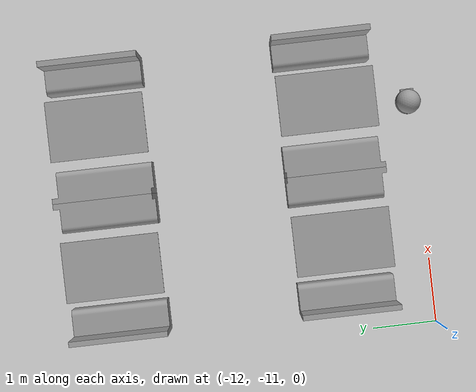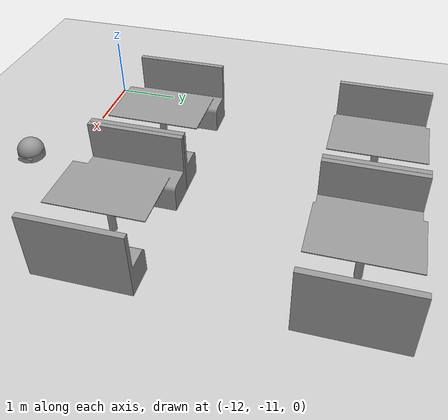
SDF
<sdf version="1.6">
 <world name="default">
  <model name="ground_plane">
   <static>1</static>
   <link name="link">
    <collision name="collision">
     <geometry><plane><normal>0 0 1</normal><size>100 100</size></plane></geometry>
     <surface><friction><ode><mu>100</mu><mu2>50</mu2></ode></friction></surface>
    </collision>
    <visual name="visual">
     <cast_shadows>0</cast_shadows>
     <geometry><plane><normal>0 0 1</normal><size>100 100</size></plane></geometry>
     <material>
      <script><uri>file://media/materials/scripts/gazebo.material</uri><name>Gazebo/Grey</name></script>
     </material>
    </visual>
   </link>
  </model>
  <model name="table_3">
   <link name="link_0">
    <inertial>
     <mass>1</mass>
     <inertia>
      <ixx>0.166667</ixx>
      <ixy>0</ixy>
      <ixz>0</ixz>
      <iyy>0.166667</iyy>
      <iyz>0</iyz>
      <izz>0.166667</izz>
     </inertia>
    </inertial>
    <visual name="visual">
     <pose>-1.9 -1.17 0 0 -0 0</pose>
     <geometry><mesh><uri>model://table/mesh/table.dae</uri><scale>0.6 0.6 0.6</scale></mesh></geometry>
     <material>
      <lighting>1</lighting>
      <script><uri>file://media/materials/scripts/gazebo.material</uri><name>Gazebo/Grey</name></script>
      <shader type="pixel"><normal_map>__default__</normal_map></shader>
      <ambient>0.3 0.3 0.3 1</ambient>
      <diffuse>0.7 0.7 0.7 1</diffuse>
      <specular>0.01 0.01 0.01 1</specular>
      <emissive>0 0 0 1</emissive>
     </material>
    </visual>
    <collision name="collision">
     <geometry><box><size>2.2 1.5 1.1</size></box></geometry>
     <surface>
      <friction>
       <ode><mu>1</mu><mu2>1</mu2><fdir1>0 0 0</fdir1><slip1>0</slip1><slip2>0</slip2></ode>
       <torsional>
        <coefficient>1</coefficient>
        <patch_radius>0</patch_radius>
        <surface_radius>0</surface_radius>
        <use_patch_radius>1</use_patch_radius>
        <ode><slip>0</slip></ode>
       </torsional>
      </friction>
      <bounce><restitution_coefficient>0</restitution_coefficient><threshold>1e+06</threshold></bounce>
      <contact>
       <collide_without_contact>0</collide_without_contact>
       <collide_without_contact_bitmask>1</collide_without_contact_bitmask>
       <collide_bitmask>1</collide_bitmask>
       <ode>
        <soft_cfm>0</soft_cfm>
        <soft_erp>0.2</soft_erp>
        <kp>1e+13</kp>
        <kd>1</kd>
        <max_vel>0.01</max_vel>
        <min_depth>0</min_depth>
       </ode>
       <bullet>
        <split_impulse>1</split_impulse>
        <split_impulse_penetration_threshold>-0.01</split_impulse_penetration_threshold>
        <soft_cfm>0</soft_cfm>
        <soft_erp>0.2</soft_erp>
        <kp>1e+13</kp>
        <kd>1</kd>
       </bullet>
      </contact>
     </surface>
    </collision>
   </link>
   <static>1</static>
   <pose>-10.5559 -6.11096 0 0 -0 0</pose>
  </model>
  <model name="table_4">
   <link name="link_0">
    <inertial>
     <mass>1</mass>
     <inertia>
      <ixx>0.166667</ixx>
      <ixy>0</ixy>
      <ixz>0</ixz>
      <iyy>0.166667</iyy>
      <iyz>0</iyz>
      <izz>0.166667</izz>
     </inertia>
    </inertial>
    <visual name="visual">
     <pose>-1.9 -1.17 0 0 -0 0</pose>
     <geometry><mesh><uri>model://table/mesh/table.dae</uri><scale>0.6 0.6 0.6</scale></mesh></geometry>
     <material>
      <lighting>1</lighting>
      <script><uri>file://media/materials/scripts/gazebo.material</uri><name>Gazebo/Grey</name></script>
      <shader type="pixel"><normal_map>__default__</normal_map></shader>
      <ambient>0.3 0.3 0.3 1</ambient>
      <diffuse>0.7 0.7 0.7 1</diffuse>
      <specular>0.01 0.01 0.01 1</specular>
      <emissive>0 0 0 1</emissive>
     </material>
    </visual>
    <collision name="collision">
     <geometry><box><size>2.2 1.5 1.1</size></box></geometry>
     <surface>
      <friction>
       <ode><mu>1</mu><mu2>1</mu2><fdir1>0 0 0</fdir1><slip1>0</slip1><slip2>0</slip2></ode>
       <torsional>
        <coefficient>1</coefficient>
        <patch_radius>0</patch_radius>
        <surface_radius>0</surface_radius>
        <use_patch_radius>1</use_patch_radius>
        <ode><slip>0</slip></ode>
       </torsional>
      </friction>
      <bounce><restitution_coefficient>0</restitution_coefficient><threshold>1e+06</threshold></bounce>
      <contact>
       <collide_without_contact>0</collide_without_contact>
       <collide_without_contact_bitmask>1</collide_without_contact_bitmask>
       <collide_bitmask>1</collide_bitmask>
       <ode>
        <soft_cfm>0</soft_cfm>
        <soft_erp>0.2</soft_erp>
        <kp>1e+13</kp>
        <kd>1</kd>
        <max_vel>0.01</max_vel>
        <min_depth>0</min_depth>
       </ode>
       <bullet>
        <split_impulse>1</split_impulse>
        <split_impulse_penetration_threshold>-0.01</split_impulse_penetration_threshold>
        <soft_cfm>0</soft_cfm>
        <soft_erp>0.2</soft_erp>
        <kp>1e+13</kp>
        <kd>1</kd>
       </bullet>
      </contact>
     </surface>
    </collision>
   </link>
   <static>1</static>
   <pose>-10.5562 -9.62109 0 0 -0 0</pose>
  </model>
  <model name="table_7">
   <link name="link_0">
    <inertial>
     <mass>1</mass>
     <inertia>
      <ixx>0.166667</ixx>
      <ixy>0</ixy>
      <ixz>0</ixz>
      <iyy>0.166667</iyy>
      <iyz>0</iyz>
      <izz>0.166667</izz>
     </inertia>
    </inertial>
    <visual name="visual">
     <pose>-1.9 -1.17 0 0 -0 0</pose>
     <geometry><mesh><uri>model://table/mesh/table.dae</uri><scale>0.6 0.6 0.6</scale></mesh></geometry>
     <material>
      <lighting>1</lighting>
      <script><uri>file://media/materials/scripts/gazebo.material</uri><name>Gazebo/Grey</name></script>
      <shader type="pixel"><normal_map>__default__</normal_map></shader>
      <ambient>0.3 0.3 0.3 1</ambient>
      <diffuse>0.7 0.7 0.7 1</diffuse>
      <specular>0.01 0.01 0.01 1</specular>
      <emissive>0 0 0 1</emissive>
     </material>
    </visual>
    <collision name="collision">
     <geometry><box><size>2.2 1.5 1.1</size></box></geometry>
     <surface>
      <friction>
       <ode><mu>1</mu><mu2>1</mu2><fdir1>0 0 0</fdir1><slip1>0</slip1><slip2>0</slip2></ode>
       <torsional>
        <coefficient>1</coefficient>
        <patch_radius>0</patch_radius>
        <surface_radius>0</surface_radius>
        <use_patch_radius>1</use_patch_radius>
        <ode><slip>0</slip></ode>
       </torsional>
      </friction>
      <bounce><restitution_coefficient>0</restitution_coefficient><threshold>1e+06</threshold></bounce>
      <contact>
       <collide_without_contact>0</collide_without_contact>
       <collide_without_contact_bitmask>1</collide_without_contact_bitmask>
       <collide_bitmask>1</collide_bitmask>
       <ode>
        <soft_cfm>0</soft_cfm>
        <soft_erp>0.2</soft_erp>
        <kp>1e+13</kp>
        <kd>1</kd>
        <max_vel>0.01</max_vel>
        <min_depth>0</min_depth>
       </ode>
       <bullet>
        <split_impulse>1</split_impulse>
        <split_impulse_penetration_threshold>-0.01</split_impulse_penetration_threshold>
        <soft_cfm>0</soft_cfm>
        <soft_erp>0.2</soft_erp>
        <kp>1e+13</kp>
        <kd>1</kd>
       </bullet>
      </contact>
     </surface>
    </collision>
   </link>
   <static>1</static>
   <pose>-8.41264 -6.11092 0 0 -0 0</pose>
  </model>
  <model name="table_8">
   <link name="link_0">
    <inertial>
     <mass>1</mass>
     <inertia>
      <ixx>0.166667</ixx>
      <ixy>0</ixy>
      <ixz>0</ixz>
      <iyy>0.166667</iyy>
      <iyz>0</iyz>
      <izz>0.166667</izz>
     </inertia>
    </inertial>
    <visual name="visual">
     <pose>-1.9 -1.17 0 0 -0 0</pose>
     <geometry><mesh><uri>model://table/mesh/table.dae</uri><scale>0.6 0.6 0.6</scale></mesh></geometry>
     <material>
      <lighting>1</lighting>
      <script><uri>file://media/materials/scripts/gazebo.material</uri><name>Gazebo/Grey</name></script>
      <shader type="pixel"><normal_map>__default__</normal_map></shader>
      <ambient>0.3 0.3 0.3 1</ambient>
      <diffuse>0.7 0.7 0.7 1</diffuse>
      <specular>0.01 0.01 0.01 1</specular>
      <emissive>0 0 0 1</emissive>
     </material>
    </visual>
    <collision name="collision">
     <geometry><box><size>2.2 1.5 1.1</size></box></geometry>
     <surface>
      <friction>
       <ode><mu>1</mu><mu2>1</mu2><fdir1>0 0 0</fdir1><slip1>0</slip1><slip2>0</slip2></ode>
       <torsional>
        <coefficient>1</coefficient>
        <patch_radius>0</patch_radius>
        <surface_radius>0</surface_radius>
        <use_patch_radius>1</use_patch_radius>
        <ode><slip>0</slip></ode>
       </torsional>
      </friction>
      <bounce><restitution_coefficient>0</restitution_coefficient><threshold>1e+06</threshold></bounce>
      <contact>
       <collide_without_contact>0</collide_without_contact>
       <collide_without_contact_bitmask>1</collide_without_contact_bitmask>
       <collide_bitmask>1</collide_bitmask>
       <ode>
        <soft_cfm>0</soft_cfm>
        <soft_erp>0.2</soft_erp>
        <kp>1e+13</kp>
        <kd>1</kd>
        <max_vel>0.01</max_vel>
        <min_depth>0</min_depth>
       </ode>
       <bullet>
        <split_impulse>1</split_impulse>
        <split_impulse_penetration_threshold>-0.01</split_impulse_penetration_threshold>
        <soft_cfm>0</soft_cfm>
        <soft_erp>0.2</soft_erp>
        <kp>1e+13</kp>
        <kd>1</kd>
       </bullet>
      </contact>
     </surface>
    </collision>
   </link>
   <static>1</static>
   <pose>-8.41293 -9.62133 0 0 -0 0</pose>
  </model>
  <model name="restaurantrobot_1">
   <link name="link_0">
    <pose>-0.075 0.035 -0.02 0 -0 0</pose>
    <inertial>
     <mass>1</mass>
     <inertia><ixx>0.145833</ixx><ixy>0</ixy><ixz>0</ixz><iyy>0.145833</iyy><iyz>0</iyz><izz>0.125</izz></inertia>
    </inertial>
    <visual name="visual">
     <geometry><mesh><uri>model://robot/mesh/body01.dae</uri></mesh></geometry>
     <material>
      <lighting>1</lighting>
      <script><uri>file://media/materials/scripts/gazebo.material</uri><name>Gazebo/Grey</name></script>
      <shader type="pixel"><normal_map>__default__</normal_map></shader>
      <ambient>0.4 0.4 0.4 1</ambient>
      <diffuse>0.7 0.7 0.7 1</diffuse>
      <specular>1 1 1 0</specular>
      <emissive>0 0 0 1</emissive>
     </material>
    </visual>
    <collision name="collision">
     <pose>0 0 0.05 0 -0 0</pose>
     <geometry><cylinder><radius>0.18</radius><length>0.1</length></cylinder></geometry>
     <surface>
      <friction>
       <ode><mu>1</mu><mu2>1</mu2><fdir1>0 0 0</fdir1><slip1>0</slip1><slip2>0</slip2></ode>
       <torsional>
        <coefficient>1</coefficient>
        <patch_radius>0</patch_radius>
        <surface_radius>0</surface_radius>
        <use_patch_radius>1</use_patch_radius>
        <ode><slip>0</slip></ode>
       </torsional>
      </friction>
      <bounce><restitution_coefficient>0</restitution_coefficient><threshold>1e+06</threshold></bounce>
      <contact>
       <collide_without_contact>0</collide_without_contact>
       <collide_without_contact_bitmask>1</collide_without_contact_bitmask>
       <collide_bitmask>1</collide_bitmask>
       <ode>
        <soft_cfm>0</soft_cfm>
        <soft_erp>0.2</soft_erp>
        <kp>1e+13</kp>
        <kd>1</kd>
        <max_vel>0.01</max_vel>
        <min_depth>0</min_depth>
       </ode>
       <bullet>
        <split_impulse>1</split_impulse>
        <split_impulse_penetration_threshold>-0.01</split_impulse_penetration_threshold>
        <soft_cfm>0</soft_cfm>
        <soft_erp>0.2</soft_erp>
        <kp>1e+13</kp>
        <kd>1</kd>
       </bullet>
      </contact>
     </surface>
    </collision>
   </link>
   <link name="link_1">
    <pose>-0.075 -0.105 0.012 -1.5708 0 0</pose>
    <inertial>
     <mass>1.23801</mass>
     <inertia>
      <ixx>0.00040938</ixx>
      <ixy>0</ixy>
      <ixz>0</ixz>
      <iyy>0.00040938</iyy>
      <iyz>0</iyz>
      <izz>0.00068979</izz>
     </inertia>
    </inertial>
    <visual name="visual">
     <geometry><cylinder><radius>0.0333821</radius><length>0.025</length></cylinder></geometry>
     <material>
      <lighting>1</lighting>
      <script><uri>file://media/materials/scripts/gazebo.material</uri><name>Gazebo/Grey</name></script>
      <shader type="pixel"><normal_map>__default__</normal_map></shader>
      <ambient>0.3 0.3 0.3 1</ambient>
      <diffuse>0.7 0.7 0.7 1</diffuse>
      <specular>0.01 0.01 0.01 1</specular>
      <emissive>0 0 0 1</emissive>
     </material>
    </visual>
    <collision name="collision">
     <geometry><cylinder><radius>0.034</radius><length>0.025</length></cylinder></geometry>
     <surface>
      <friction>
       <ode><mu>1</mu><mu2>1</mu2><fdir1>0 0 0</fdir1><slip1>0</slip1><slip2>0</slip2></ode>
       <torsional>
        <coefficient>1</coefficient>
        <patch_radius>0</patch_radius>
        <surface_radius>0</surface_radius>
        <use_patch_radius>1</use_patch_radius>
        <ode><slip>0</slip></ode>
       </torsional>
      </friction>
      <bounce><restitution_coefficient>0</restitution_coefficient><threshold>1e+06</threshold></bounce>
      <contact>
       <collide_without_contact>0</collide_without_contact>
       <collide_without_contact_bitmask>1</collide_without_contact_bitmask>
       <collide_bitmask>1</collide_bitmask>
       <ode>
        <soft_cfm>0</soft_cfm>
        <soft_erp>0.2</soft_erp>
        <kp>1e+13</kp>
        <kd>1</kd>
        <max_vel>0.01</max_vel>
        <min_depth>0</min_depth>
       </ode>
       <bullet>
        <split_impulse>1</split_impulse>
        <split_impulse_penetration_threshold>-0.01</split_impulse_penetration_threshold>
        <soft_cfm>0</soft_cfm>
        <soft_erp>0.2</soft_erp>
        <kp>1e+13</kp>
        <kd>1</kd>
       </bullet>
      </contact>
     </surface>
    </collision>
   </link>
   <link name="link_1_0">
    <pose>-0.075 0.035 0.17 0 -0 0</pose>
    <inertial>
     <mass>1</mass>
     <inertia><ixx>0.145833</ixx><ixy>0</ixy><ixz>0</ixz><iyy>0.145833</iyy><iyz>0</iyz><izz>0.125</izz></inertia>
    </inertial>
    <visual name="visual">
     <pose>0 0 -0.09 0 -0 0</pose>
     <geometry><mesh><uri>model://robot/mesh/cover.dae</uri></mesh></geometry>
     <material>
      <lighting>1</lighting>
      <script><uri>file://media/materials/scripts/gazebo.material</uri><name>Gazebo/Grey</name></script>
      <shader type="pixel"><normal_map>__default__</normal_map></shader>
      <ambient>0.3 0.3 0.3 1</ambient>
      <diffuse>0.7 0.7 0.7 1</diffuse>
      <specular>0.01 0.01 0.01 1</specular>
      <emissive>0 0 0 1</emissive>
     </material>
    </visual>
    <collision name="collision">
     <geometry><cylinder><radius>0.18</radius><length>0.18</length></cylinder></geometry>
     <surface>
      <friction>
       <ode><mu>1</mu><mu2>1</mu2><fdir1>0 0 0</fdir1><slip1>0</slip1><slip2>0</slip2></ode>
       <torsional>
        <coefficient>1</coefficient>
        <patch_radius>0</patch_radius>
        <surface_radius>0</surface_radius>
        <use_patch_radius>1</use_patch_radius>
        <ode><slip>0</slip></ode>
       </torsional>
      </friction>
      <bounce><restitution_coefficient>0</restitution_coefficient><threshold>1e+06</threshold></bounce>
      <contact>
       <collide_without_contact>0</collide_without_contact>
       <collide_without_contact_bitmask>1</collide_without_contact_bitmask>
       <collide_bitmask>1</collide_bitmask>
       <ode>
        <soft_cfm>0</soft_cfm>
        <soft_erp>0.2</soft_erp>
        <kp>1e+13</kp>
        <kd>1</kd>
        <max_vel>0.01</max_vel>
        <min_depth>0</min_depth>
       </ode>
       <bullet>
        <split_impulse>1</split_impulse>
        <split_impulse_penetration_threshold>-0.01</split_impulse_penetration_threshold>
        <soft_cfm>0</soft_cfm>
        <soft_erp>0.2</soft_erp>
        <kp>1e+13</kp>
        <kd>1</kd>
       </bullet>
      </contact>
     </surface>
    </collision>
   </link>
   <link name="link_1_clone">
    <pose>-0.075 0.175 0.012 -1.5708 0 0</pose>
    <inertial>
     <mass>1.23801</mass>
     <inertia>
      <ixx>0.00040938</ixx>
      <ixy>0</ixy>
      <ixz>0</ixz>
      <iyy>0.00040938</iyy>
      <iyz>0</iyz>
      <izz>0.00068979</izz>
     </inertia>
    </inertial>
    <visual name="visual">
     <geometry><cylinder><radius>0.034</radius><length>0.025</length></cylinder></geometry>
     <material>
      <lighting>1</lighting>
      <script><uri>file://media/materials/scripts/gazebo.material</uri><name>Gazebo/Grey</name></script>
      <shader type="pixel"><normal_map>__default__</normal_map></shader>
      <ambient>0.3 0.3 0.3 1</ambient>
      <diffuse>0.7 0.7 0.7 1</diffuse>
      <specular>0.01 0.01 0.01 1</specular>
      <emissive>0 0 0 1</emissive>
     </material>
    </visual>
    <collision name="collision">
     <geometry><cylinder><radius>0.034</radius><length>0.025</length></cylinder></geometry>
     <surface>
      <friction>
       <ode><mu>1</mu><mu2>1</mu2><fdir1>0 0 0</fdir1><slip1>0</slip1><slip2>0</slip2></ode>
       <torsional>
        <coefficient>1</coefficient>
        <patch_radius>0</patch_radius>
        <surface_radius>0</surface_radius>
        <use_patch_radius>1</use_patch_radius>
        <ode><slip>0</slip></ode>
       </torsional>
      </friction>
      <bounce><restitution_coefficient>0</restitution_coefficient><threshold>1e+06</threshold></bounce>
      <contact>
       <collide_without_contact>0</collide_without_contact>
       <collide_without_contact_bitmask>1</collide_without_contact_bitmask>
       <collide_bitmask>1</collide_bitmask>
       <ode>
        <soft_cfm>0</soft_cfm>
        <soft_erp>0.2</soft_erp>
        <kp>1e+13</kp>
        <kd>1</kd>
        <max_vel>0.01</max_vel>
        <min_depth>0</min_depth>
       </ode>
       <bullet>
        <split_impulse>1</split_impulse>
        <split_impulse_penetration_threshold>-0.01</split_impulse_penetration_threshold>
        <soft_cfm>0</soft_cfm>
        <soft_erp>0.2</soft_erp>
        <kp>1e+13</kp>
        <kd>1</kd>
       </bullet>
      </contact>
     </surface>
    </collision>
   </link>
   <link name="link_2">
    <pose>0.065 0.035 -0.012 0 -0 0</pose>
    <inertial>
     <mass>1.585e-05</mass>
     <inertia><ixx>0</ixx><ixy>0</ixy><ixz>0</ixz><iyy>0</iyy><iyz>0</iyz><izz>0</izz></inertia>
    </inertial>
    <visual name="visual">
     <geometry><sphere><radius>0.01</radius></sphere></geometry>
     <material>
      <lighting>1</lighting>
      <script><uri>file://media/materials/scripts/gazebo.material</uri><name>Gazebo/Grey</name></script>
      <shader type="pixel"><normal_map>__default__</normal_map></shader>
      <ambient>0.3 0.3 0.3 1</ambient>
      <diffuse>0.7 0.7 0.7 1</diffuse>
      <specular>0.01 0.01 0.01 1</specular>
      <emissive>0 0 0 1</emissive>
     </material>
    </visual>
    <collision name="collision">
     <geometry><sphere><radius>0.01</radius></sphere></geometry>
     <surface>
      <friction>
       <ode><mu>1</mu><mu2>1</mu2><fdir1>0 0 0</fdir1><slip1>0</slip1><slip2>0</slip2></ode>
       <torsional>
        <coefficient>1</coefficient>
        <patch_radius>0</patch_radius>
        <surface_radius>0</surface_radius>
        <use_patch_radius>1</use_patch_radius>
        <ode><slip>0</slip></ode>
       </torsional>
      </friction>
      <bounce><restitution_coefficient>0</restitution_coefficient><threshold>1e+06</threshold></bounce>
      <contact>
       <collide_without_contact>0</collide_without_contact>
       <collide_without_contact_bitmask>1</collide_without_contact_bitmask>
       <collide_bitmask>1</collide_bitmask>
       <ode>
        <soft_cfm>0</soft_cfm>
        <soft_erp>0.2</soft_erp>
        <kp>1e+13</kp>
        <kd>1</kd>
        <max_vel>0.01</max_vel>
        <min_depth>0</min_depth>
       </ode>
       <bullet>
        <split_impulse>1</split_impulse>
        <split_impulse_penetration_threshold>-0.01</split_impulse_penetration_threshold>
        <soft_cfm>0</soft_cfm>
        <soft_erp>0.2</soft_erp>
        <kp>1e+13</kp>
        <kd>1</kd>
       </bullet>
      </contact>
     </surface>
    </collision>
   </link>
   <link name="link_2_clone">
    <pose>-0.215 0.035 -0.012 0 -0 0</pose>
    <inertial>
     <mass>1.585e-05</mass>
     <inertia><ixx>0</ixx><ixy>0</ixy><ixz>0</ixz><iyy>0</iyy><iyz>0</iyz><izz>0</izz></inertia>
    </inertial>
    <visual name="visual">
     <geometry><sphere><radius>0.01</radius></sphere></geometry>
     <material>
      <lighting>1</lighting>
      <script><uri>file://media/materials/scripts/gazebo.material</uri><name>Gazebo/Grey</name></script>
      <shader type="pixel"><normal_map>__default__</normal_map></shader>
      <ambient>0.3 0.3 0.3 1</ambient>
      <diffuse>0.7 0.7 0.7 1</diffuse>
      <specular>0.01 0.01 0.01 1</specular>
      <emissive>0 0 0 1</emissive>
     </material>
    </visual>
    <collision name="collision">
     <geometry><sphere><radius>0.01</radius></sphere></geometry>
     <surface>
      <friction>
       <ode><mu>1</mu><mu2>1</mu2><fdir1>0 0 0</fdir1><slip1>0</slip1><slip2>0</slip2></ode>
       <torsional>
        <coefficient>1</coefficient>
        <patch_radius>0</patch_radius>
        <surface_radius>0</surface_radius>
        <use_patch_radius>1</use_patch_radius>
        <ode><slip>0</slip></ode>
       </torsional>
      </friction>
      <bounce><restitution_coefficient>0</restitution_coefficient><threshold>1e+06</threshold></bounce>
      <contact>
       <collide_without_contact>0</collide_without_contact>
       <collide_without_contact_bitmask>1</collide_without_contact_bitmask>
       <collide_bitmask>1</collide_bitmask>
       <ode>
        <soft_cfm>0</soft_cfm>
        <soft_erp>0.2</soft_erp>
        <kp>1e+13</kp>
        <kd>1</kd>
        <max_vel>0.01</max_vel>
        <min_depth>0</min_depth>
       </ode>
       <bullet>
        <split_impulse>1</split_impulse>
        <split_impulse_penetration_threshold>-0.01</split_impulse_penetration_threshold>
        <soft_cfm>0</soft_cfm>
        <soft_erp>0.2</soft_erp>
        <kp>1e+13</kp>
        <kd>1</kd>
       </bullet>
      </contact>
     </surface>
    </collision>
   </link>
   <joint name="link_0_JOINT_0" type="revolute">
    <parent>link_0</parent>
    <child>link_1</child>
    <axis>
     <xyz>0 0 -1</xyz>
     <use_parent_model_frame>0</use_parent_model_frame>
     <limit>
      <lower>-1.79769e+308</lower>
      <upper>1.79769e+308</upper>
      <effort>-1</effort>
      <velocity>-1</velocity>
     </limit>
     <dynamics>
      <spring_reference>0</spring_reference>
      <spring_stiffness>0</spring_stiffness>
      <damping>0</damping>
     </dynamics>
    </axis>
    <physics>
     <ode><limit><cfm>0</cfm><erp>0.2</erp></limit><suspension><cfm>0</cfm><erp>0.2</erp></suspension></ode>
    </physics>
   </joint>
   <joint name="link_0_JOINT_1" type="revolute">
    <parent>link_0</parent>
    <child>link_1_clone</child>
    <axis>
     <xyz>0 0 1</xyz>
     <use_parent_model_frame>0</use_parent_model_frame>
     <limit>
      <lower>-1.79769e+308</lower>
      <upper>1.79769e+308</upper>
      <effort>-1</effort>
      <velocity>-1</velocity>
     </limit>
     <dynamics>
      <spring_reference>0</spring_reference>
      <spring_stiffness>0</spring_stiffness>
      <damping>0</damping>
     </dynamics>
    </axis>
    <physics>
     <ode><limit><cfm>0</cfm><erp>0.2</erp></limit><suspension><cfm>0</cfm><erp>0.2</erp></suspension></ode>
    </physics>
   </joint>
   <joint name="link_0_JOINT_2" type="ball">
    <parent>link_0</parent>
    <child>link_2</child>
    <physics>
     <ode><limit><cfm>0</cfm><erp>0.2</erp></limit><suspension><cfm>0</cfm><erp>0.2</erp></suspension></ode>
    </physics>
   </joint>
   <joint name="link_0_JOINT_3" type="ball">
    <parent>link_0</parent>
    <child>link_2_clone</child>
    <physics>
     <ode><limit><cfm>0</cfm><erp>0.2</erp></limit><suspension><cfm>0</cfm><erp>0.2</erp></suspension></ode>
    </physics>
   </joint>
   <joint name="link_0_JOINT_4" type="revolute">
    <parent>link_0</parent>
    <child>link_1_0</child>
    <axis>
     <xyz>0 1 0</xyz>
     <use_parent_model_frame>0</use_parent_model_frame>
     <limit>
      <lower>-1.79769e+308</lower>
      <upper>1.79769e+308</upper>
      <effort>-1</effort>
      <velocity>-1</velocity>
     </limit>
     <dynamics>
      <spring_reference>0</spring_reference>
      <spring_stiffness>0</spring_stiffness>
      <damping>0</damping>
     </dynamics>
    </axis>
    <physics>
     <ode><limit><cfm>0</cfm><erp>0.2</erp></limit><suspension><cfm>0</cfm><erp>0.2</erp></suspension></ode>
    </physics>
   </joint>
   <static>0</static>
   <allow_auto_disable>0</allow_auto_disable>
   <pose>-8.49342 -10.8209 1.022 0 0 -2e-06</pose>
  </model>
 </world>
</sdf>
